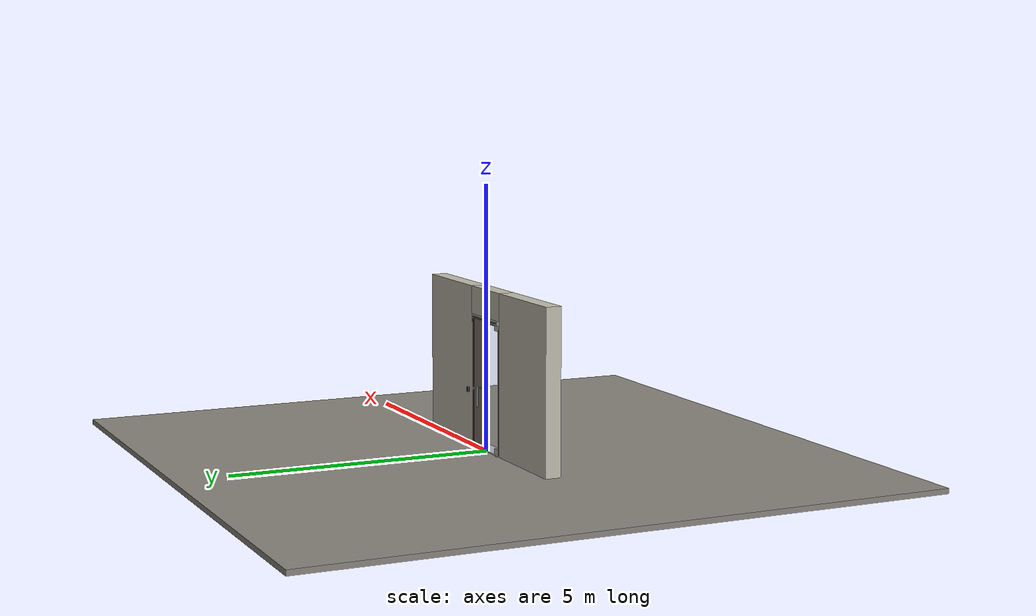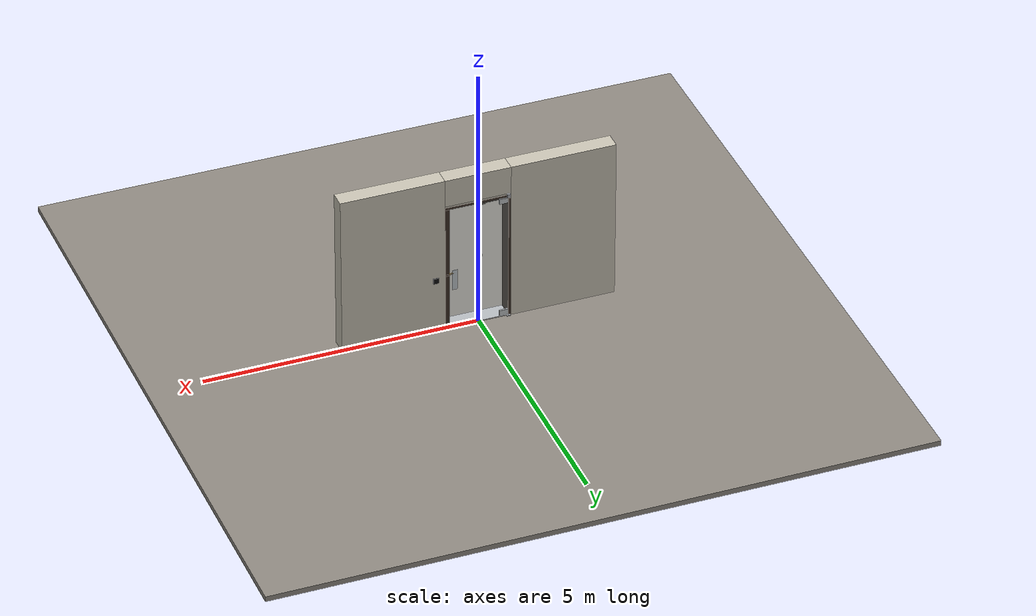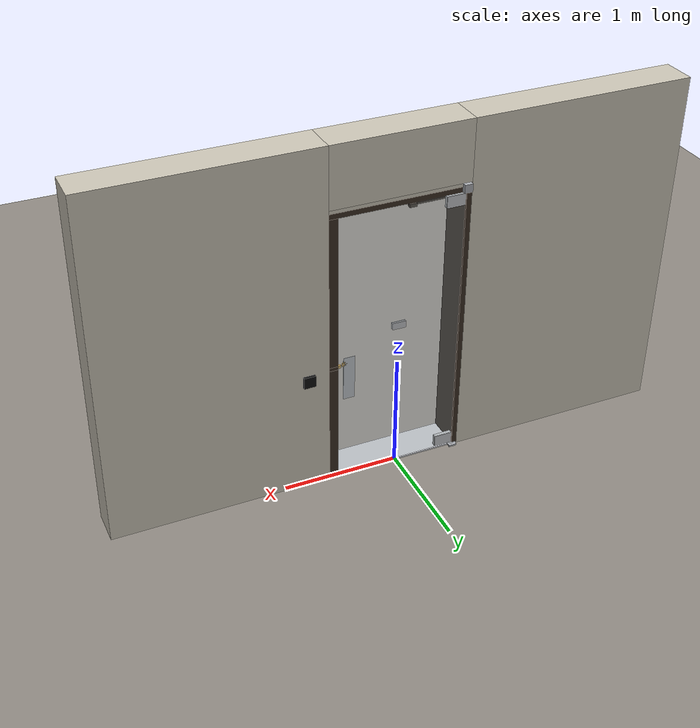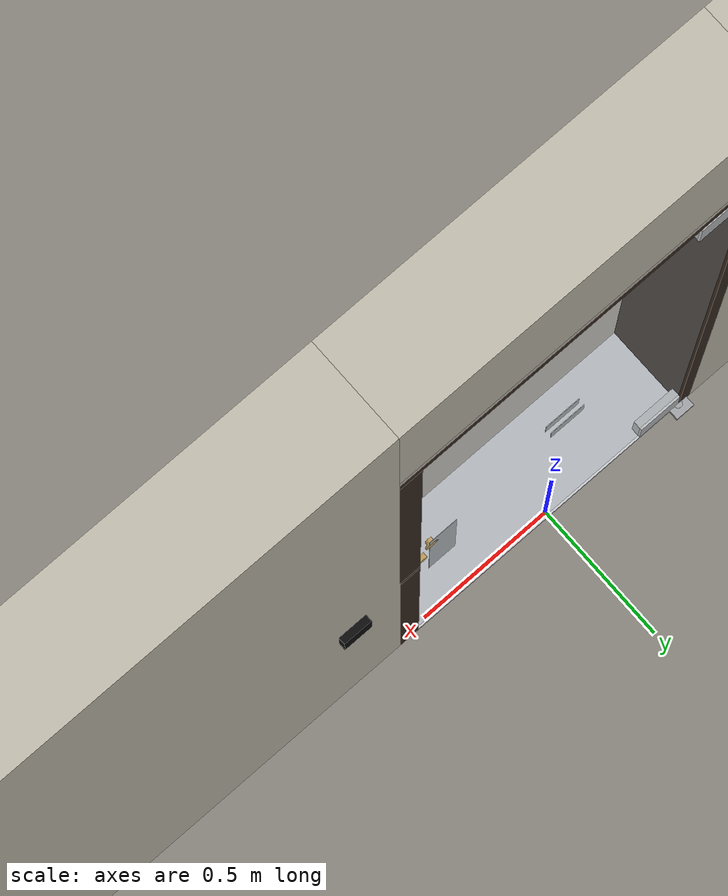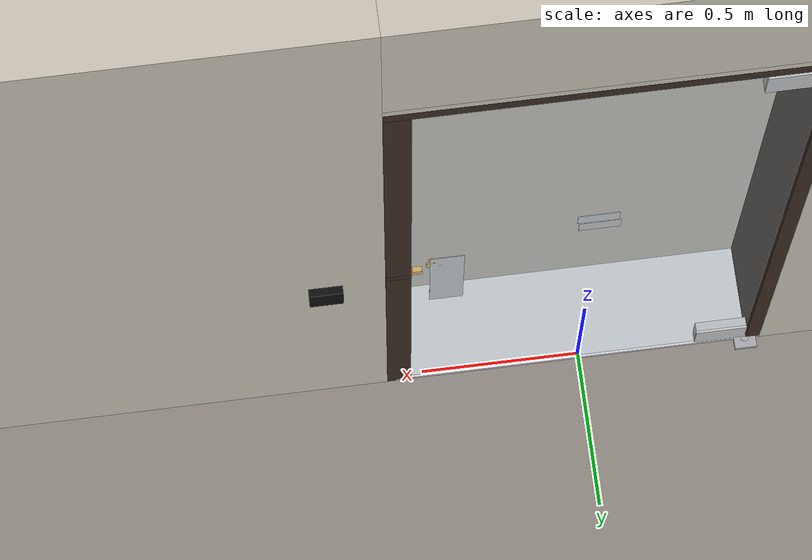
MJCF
<?xml version="1.0" ?>
<mujoco model="db0479_automatic_swing_full">
  <compiler angle="radian" meshdir="../../hardware" texturedir="../../textures" autolimits="true" inertiafromgeom="false"/>
  <option timestep="0.002" integrator="implicitfast" cone="elliptic" impratio="10" noslip_iterations="3">
    <flag multiccd="enable"/>
  </option>
  <size memory="16M"/>
  <default>
    <geom condim="4" solref="0.005 1" solimp="0.95 0.99 0.001"/>
    <joint solreflimit="0.005 1" solimplimit="0.95 0.99 0.001"/>
    <tendon solreflimit="0.005 1"/>
    <equality solref="0.002 1"/>
  </default>
  <visual>
    <headlight ambient="0.4 0.4 0.4" diffuse="0.7 0.7 0.7" specular="0.2 0.2 0.2"/>
    <quality shadowsize="4096"/>
    <map znear="0.01" zfar="60"/>
  </visual>
  <asset>
    <mesh name="cyl_face_e9e5036966" file="cyl_face_e9e5036966.obj"/>
    <mesh name="exit_sign_a6449bfa2c" file="exit_sign_a6449bfa2c.obj"/>
    <material name="mat_floor" rgba="0.55 0.53 0.5 1" specular="0.2" shininess="0.15" reflectance="0"/>
    <material name="mat_wall" rgba="0.78 0.76 0.7 1" specular="0.2" shininess="0.1" reflectance="0"/>
    <material name="mat_leaf" rgba="0.85 0.92 0.95 0.25" specular="0.2" shininess="0.95" reflectance="0.1"/>
    <material name="mat_glass_leaf" rgba="0.85 0.92 0.95 0.25" specular="0.2" shininess="0.95" reflectance="0.1"/>
    <material name="mat_patch" rgba="0.75 0.76 0.77 1" specular="0.8" shininess="0.65" reflectance="0.4"/>
    <material name="mat_hinge" rgba="0.65 0.66 0.68 1" specular="0.74" shininess="0.5" reflectance="0.36"/>
    <material name="mat_op_stainless" rgba="0.75 0.76 0.77 1" specular="0.8" shininess="0.65" reflectance="0.4"/>
    <material name="mat_deadbolt" rgba="0.85 0.66 0.3 1" specular="0.8" shininess="0.75" reflectance="0.4"/>
    <material name="mat_frame" rgba="0.22 0.17 0.13 1" specular="0.8" shininess="0.6" reflectance="0.4"/>
    <material name="mat_threshold" rgba="0.8 0.81 0.83 1" specular="0.8" shininess="0.6" reflectance="0.4"/>
    <material name="mat_closer" rgba="0.22 0.17 0.13 1" specular="0.8" shininess="0.6" reflectance="0.4"/>
    <material name="mat_exit_sign" rgba="0.85 0.1 0.1 1" specular="0.2" shininess="0.6" reflectance="0"/>
    <material name="mat_sign_bracket" rgba="0.8 0.81 0.83 1" specular="0.8" shininess="0.6" reflectance="0.4"/>
    <material name="mat_sign" rgba="0.75 0.76 0.77 1" specular="0.8" shininess="0.65" reflectance="0.4"/>
    <material name="mat_wallreader" rgba="0.05 0.05 0.05 1" specular="0.38" shininess="0.3" reflectance="0.12"/>
    <texture name="skybox" type="skybox" builtin="gradient" rgb1="0.6 0.7 0.85" rgb2="0.9 0.92 0.95" width="256" height="256"/>
  </asset>
  <worldbody>
    <light name="sun" pos="1.5 -2.5 4" dir="-0.3 0.5 -0.8" directional="true" diffuse="0.8 0.8 0.8" specular="0.3 0.3 0.3" castshadow="true"/>
    <light name="fill" pos="-1.5 2.5 3" dir="0.3 -0.5 -0.7" directional="true" diffuse="0.35 0.35 0.4" castshadow="false"/>
    <camera name="robot_view" pos="0 -3.056313 2.043887" xyaxes="1 0 0 0 0.26963 0.962964" fovy="52"/>
    <camera name="far_view" pos="0 2.789312 2.043887" xyaxes="-1 0 0 0 -0.26963 0.962964" fovy="52"/>
    <camera name="iso" pos="2.221337 -2.588663 2.511538" xyaxes="0.741536 0.670913 0 -0.242917 0.268487 0.932151" fovy="46"/>
    <camera name="detail_handle" pos="0.609 -0.9335 1.245" xyaxes="0.97561 0.219512 0 -0.070934 0.315262 0.94635" fovy="38"/>
    <geom name="floor" type="box" size="6 6 0.05" pos="0 0 -0.05" material="mat_floor" group="0" contype="1" conaffinity="1" friction="0.8 0.005 0.0001" density="2400"/>
    <geom name="wall_left" type="box" size="0.9585 0.15 1.5255" pos="-1.5415 -0.1335 1.5255" material="mat_wall" group="0" contype="1" conaffinity="1" friction="0.6 0.005 0.0001" density="800"/>
    <geom name="wall_right" type="box" size="0.9435 0.15 1.5255" pos="1.5565 -0.1335 1.5255" material="mat_wall" group="0" contype="1" conaffinity="1" friction="0.6 0.005 0.0001" density="800"/>
    <geom name="wall_header" type="box" size="0.598 0.15 0.2625" pos="0.015 -0.1335 2.7885" material="mat_wall" group="0" contype="1" conaffinity="1" friction="0.6 0.005 0.0001" density="800"/>
    <geom name="pivot_bottom_socket" type="box" size="0.035 0.035 0.0125" pos="-0.535 0.0165 0.0025" material="mat_hinge" group="1" contype="0" conaffinity="0" density="7850"/>
    <geom name="pivot_top_bracket" type="box" size="0.035 0.035 0.0355" pos="-0.535 0.0165 2.4905" material="mat_hinge" group="1" contype="0" conaffinity="0" density="7850"/>
    <geom name="leaf_deadbolt_strike_b" type="box" size="0.0155 0.003 0.0005" pos="0.5375 0 1.0865" quat="-0.5 -0.5 0.5 0.5" material="mat_deadbolt" group="1" contype="0" conaffinity="0" density="7800"/>
    <geom name="leaf_deadbolt_strike_l" type="box" size="0.003 0.0155 0.0005" pos="0.5375 0.0125 1.105" quat="-0.5 -0.5 0.5 0.5" material="mat_deadbolt" group="1" contype="0" conaffinity="0" density="7800"/>
    <geom name="leaf_deadbolt_strike_t" type="box" size="0.0155 0.003 0.0005" pos="0.5375 0 1.1235" quat="-0.5 -0.5 0.5 0.5" material="mat_deadbolt" group="1" contype="0" conaffinity="0" density="7800"/>
    <geom name="leaf_deadbolt_strike_r" type="box" size="0.003 0.0155 0.0005" pos="0.5375 -0.0125 1.105" quat="-0.5 -0.5 0.5 0.5" material="mat_deadbolt" group="1" contype="0" conaffinity="0" density="7800"/>
    <geom name="jamb_hinge" type="box" size="0.0225 0.15 1.2255" pos="-0.5605 -0.1335 1.2255" material="mat_frame" group="0" contype="1" conaffinity="1" friction="0.6 0.005 0.0001" density="300"/>
    <geom name="strike_1105_wall_n" type="box" size="0.0375 0.137 0.0155" pos="0.5755 -0.1465 1.105" material="mat_frame" group="0" contype="1" conaffinity="1" friction="0.6 0.005 0.0001" density="300"/>
    <geom name="strike_1105_wall_p" type="box" size="0.0375 0.0035 0.0155" pos="0.5755 0.013 1.105" material="mat_frame" group="0" contype="1" conaffinity="1" friction="0.6 0.005 0.0001" density="300"/>
    <geom name="strike_1105_back" type="box" size="0.0228 0.0095 0.0155" pos="0.5902 0 1.105" material="mat_frame" group="0" contype="1" conaffinity="1" friction="0.6 0.005 0.0001" density="300"/>
    <geom name="jamb_strike_0" type="box" size="0.0375 0.15 0.54475" pos="0.5755 -0.1335 0.54475" material="mat_frame" group="0" contype="1" conaffinity="1" friction="0.6 0.005 0.0001" density="300"/>
    <geom name="jamb_strike_1" type="box" size="0.0375 0.15 0.66525" pos="0.5755 -0.1335 1.78575" material="mat_frame" group="0" contype="1" conaffinity="1" friction="0.6 0.005 0.0001" density="300"/>
    <geom name="jamb_head" type="box" size="0.598 0.15 0.0225" pos="0.015 -0.1335 2.4735" material="mat_frame" group="0" contype="1" conaffinity="1" friction="0.6 0.005 0.0001" density="300"/>
    <geom name="head_stud" type="box" size="0.598 0.15 0.015" pos="0.015 -0.1335 2.511" material="mat_wall" group="0" contype="1" conaffinity="1" friction="0.6 0.005 0.0001" density="500"/>
    <geom name="threshold" type="box" size="0.583 0.15 0.0065" pos="0 -0.1335 0.0065" material="mat_threshold" group="0" contype="1" conaffinity="1" friction="0.5 0.005 0.0001" density="2700"/>
    <geom name="auto_operator_header" type="box" size="0.34 0.055 0.055" pos="0 -0.0745 2.514" material="mat_closer" group="0" contype="1" conaffinity="1" friction="0.6 0.005 0.0001" density="1500"/>
    <geom name="exit_sign" type="mesh" mesh="exit_sign_a6449bfa2c" pos="0 -0.15 2.751" material="mat_exit_sign" group="2" contype="0" conaffinity="0" density="500"/>
    <geom name="wave_sensor_n" type="box" size="0.05 0.012 0.05" pos="0.788 -0.2955 1.05" material="mat_wallreader" group="0" contype="1" conaffinity="1" friction="0.6 0.005 0.0001" density="1000"/>
    <geom name="wave_sensor_p" type="box" size="0.05 0.012 0.05" pos="0.788 0.0285 1.05" material="mat_wallreader" group="0" contype="1" conaffinity="1" friction="0.6 0.005 0.0001" density="1000"/>
    <site name="approach_point" pos="0 -1.5 0" quat="1 0 0 0" size="0.05" rgba="0.2 0.9 0.2 0.5" group="4"/>
    <site name="goal_point" pos="0 1.5 0" quat="1 0 0 0" size="0.05" rgba="0.2 0.9 0.2 0.5" group="4"/>
    <site name="door_plane_center" pos="0 0 1.2255" quat="1 0 0 0" size="0.02" rgba="0.2 0.9 0.2 0.5" group="4"/>
    <body name="leaf" pos="-0.538 0 0">
      <inertial pos="0.556143 -0.002824 1.286361" mass="92.128198" quat="-0.484987 0.483179 0.514256 0.516592" diaginertia="9.100538686 46.593643977 55.675113925"/>
      <joint name="leaf_hinge" type="hinge" axis="0 0 1" pos="0.003 0.0165 0" limited="true" range="0 1.570796" damping="15.570702" frictionloss="1.196857" stiffness="19.0031" springref="-2.141756" armature="0.02"/>
      <geom name="leaf_glass" type="box" size="0.5335 0.0095 1.215" pos="0.5395 0 1.232" material="mat_glass_leaf" group="0" contype="1" conaffinity="1" friction="0.4 0.005 0.0001" density="1"/>
      <geom name="leaf_patch_bot" type="box" size="0.08 0.0175 0.05" pos="0.086 0 0.077" material="mat_patch" group="1" contype="0" conaffinity="0" density="1"/>
      <geom name="leaf_patch_top" type="box" size="0.08 0.0175 0.05" pos="0.086 0 2.387" material="mat_patch" group="1" contype="0" conaffinity="0" density="1"/>
      <geom name="pivot_bottom" type="cylinder" size="0.014 0.004" pos="0.003 0.0165 0.012" material="mat_hinge" group="1" contype="0" conaffinity="0" density="7850"/>
      <geom name="pivot_top" type="cylinder" size="0.014 0.004" pos="0.003 0.0165 2.451" material="mat_hinge" group="1" contype="0" conaffinity="0" density="7850"/>
      <geom name="leaf_push_plate_n" type="box" size="0.05 0.0008 0.2" pos="0.968 -0.0103 0.965" material="mat_op_stainless" group="1" contype="0" conaffinity="0" density="7900"/>
      <geom name="leaf_deadbolt_faceplate" type="box" size="0.0006 0.0075 0.0245" pos="1.0724 0 1.105" material="mat_deadbolt" group="1" contype="0" conaffinity="0" density="8500"/>
      <geom name="leaf_deadbolt_cylinder_face" type="mesh" mesh="cyl_face_e9e5036966" pos="1.008 -0.0095 1.105" quat="0.707107 0.707107 0 0" material="mat_deadbolt" group="1" contype="0" conaffinity="0" density="7100"/>
      <geom name="auto_operator_arm" type="box" size="0.22 0.008 0.008" pos="0.25 -0.0395 2.41" material="mat_closer" group="1" contype="0" conaffinity="0" density="2700"/>
      <geom name="auto_operator_arm_shoe" type="box" size="0.03 0.016 0.014" pos="0.44 -0.0255 2.41" material="mat_closer" group="1" contype="0" conaffinity="0" density="2700"/>
      <geom name="sign_push" type="box" size="0.06 0.001 0.03" pos="0.5395 -0.0105 1.367" material="mat_sign" group="2" contype="0" conaffinity="0" density="7900"/>
      <geom name="sign_pull" type="box" size="0.06 0.001 0.03" pos="0.5395 0.0105 1.367" material="mat_sign" group="2" contype="0" conaffinity="0" density="7900"/>
      <site name="leaf_push_plate_push_n" pos="0.968 -0.0095 0.965" quat="1 0 0 0" size="0.012" rgba="0.2 0.9 0.2 0.5" group="4"/>
      <site name="leaf_edge_mid" pos="1.073 0 1.215" quat="1 0 0 0" size="0.02" rgba="0.2 0.9 0.2 0.5" group="4"/>
      <body name="leaf_deadbolt" pos="1.073 0 1.105">
        <inertial pos="-0.0023 0 0" mass="0.18836" quat="0 0 0.707107 0.707107" diaginertia="0.000013829 0.000052194 0.000057986"/>
        <geom name="leaf_deadbolt_box" type="box" size="0.0277 0.008 0.0125" pos="-0.0023 0 0" material="mat_deadbolt" group="0" contype="1" conaffinity="1" friction="0.3 0.005 0.0001" density="8500"/>
      </body>
    </body>
  </worldbody>
  <actuator>
    <position name="swing_operator" joint="leaf_hinge" kp="150" kv="40" forcerange="-60 60" ctrlrange="0 1.6"/>
  </actuator>
  <sensor>
    <jointpos name="leaf_hinge_pos" joint="leaf_hinge"/>
    <jointvel name="leaf_hinge_vel" joint="leaf_hinge"/>
  </sensor>
</mujoco>
